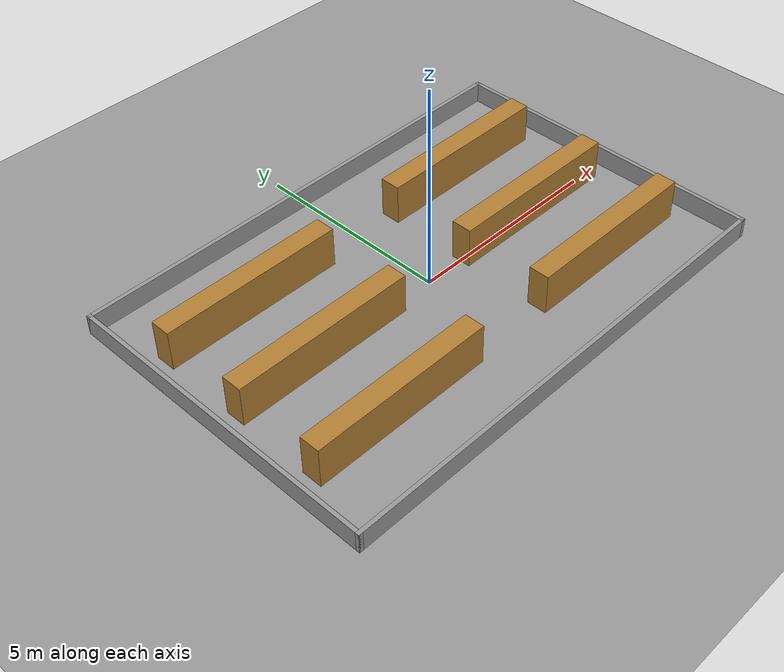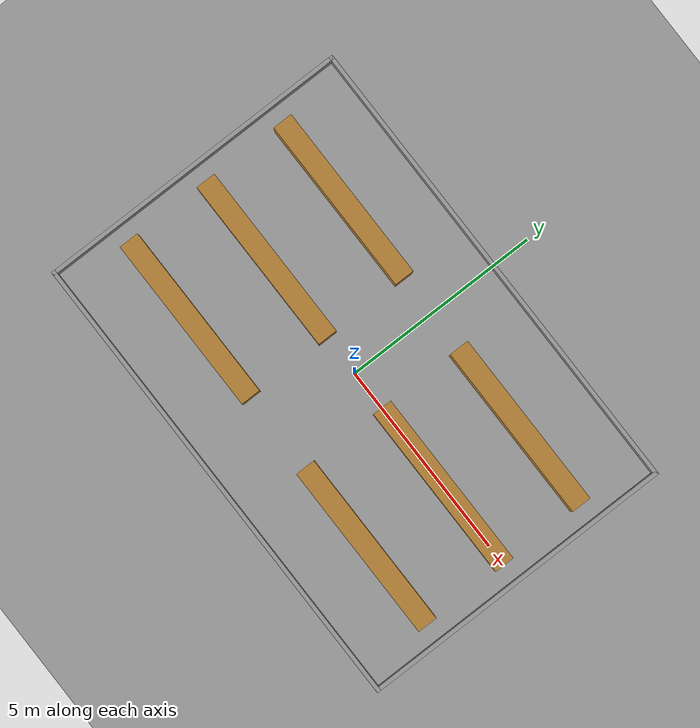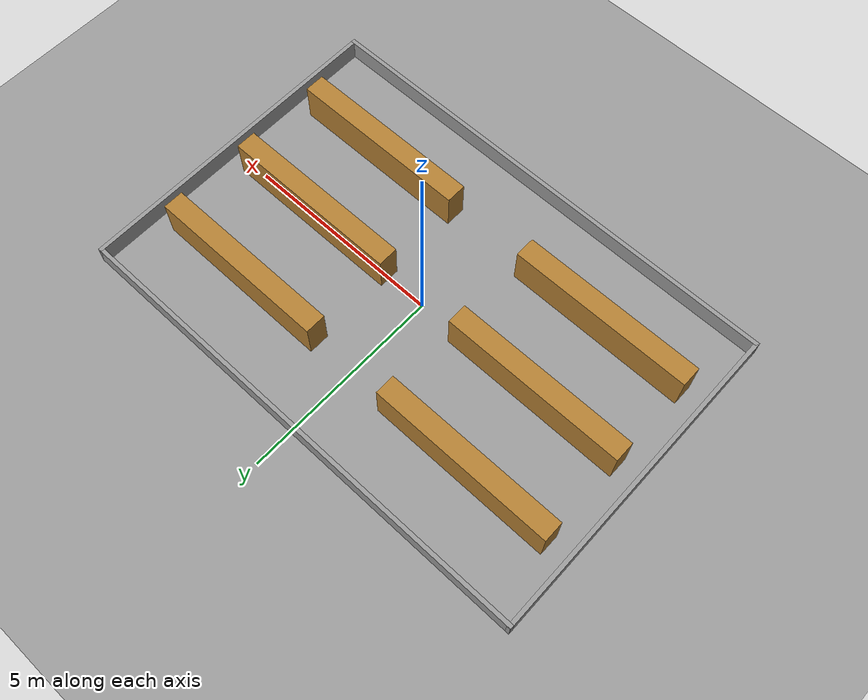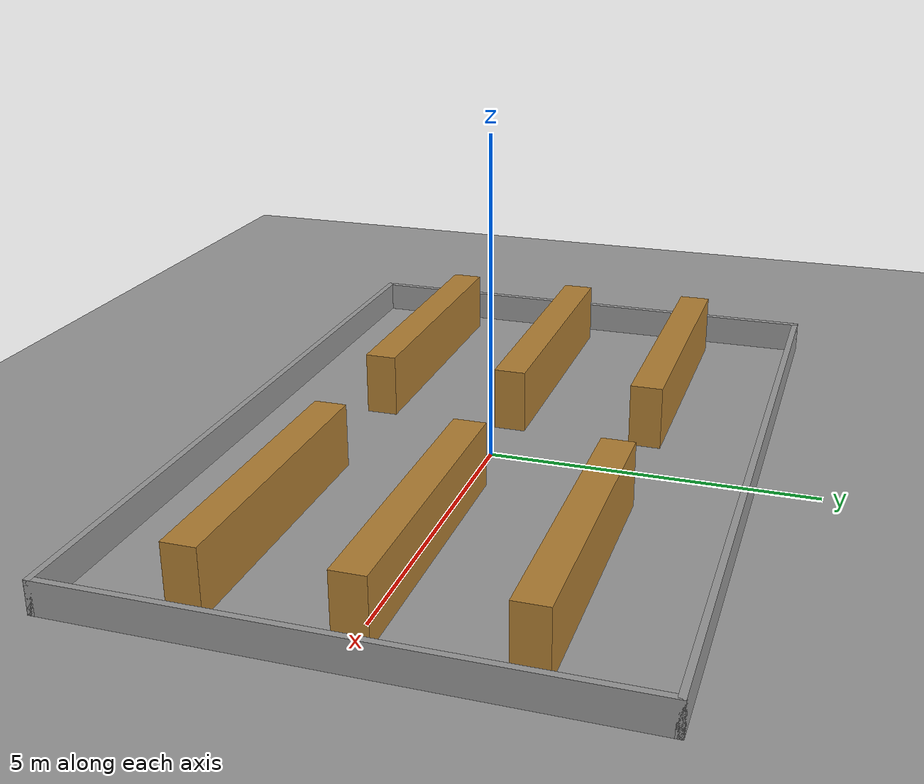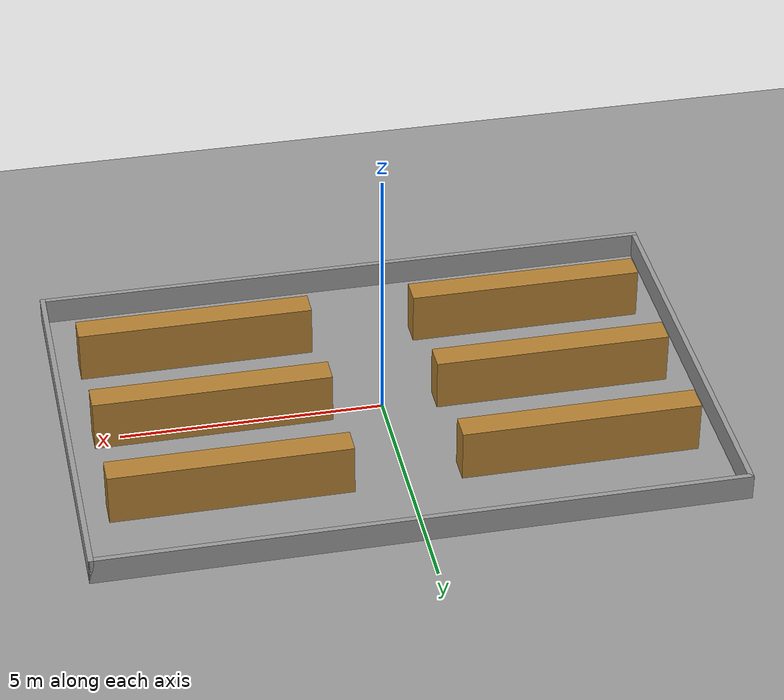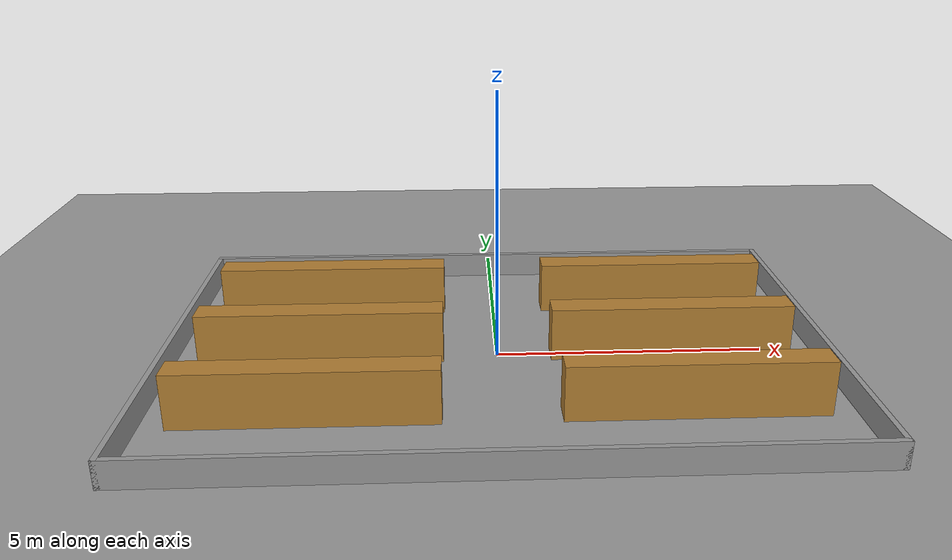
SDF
<?xml version="1.0" ?>
<sdf version="1.9">
  <world name="atlas_warehouse">

    <!-- Xem giải thích panel GUI này (Visualize Lidar, v.v.) trong maze.sdf -- copy nguyên
         khối GUI/plugin từ đó để world nào cũng có trải nghiệm giống nhau. -->
    <gui fullscreen="0">
      <plugin filename="MinimalScene" name="3D View">
        <gz-gui>
          <title>3D View</title>
          <property type="bool" key="showTitleBar">false</property>
          <property type="string" key="state">docked</property>
        </gz-gui>
        <engine>ogre2</engine>
        <scene>scene</scene>
        <ambient_light>0.4 0.4 0.4</ambient_light>
        <background_color>0.8 0.8 0.8</background_color>
        <camera_pose>-10 -8 10 0 0.6 0.7</camera_pose>
      </plugin>
      <plugin filename="EntityContextMenuPlugin" name="Entity context menu">
        <gz-gui>
          <property key="state" type="string">floating</property>
          <property key="width" type="double">5</property>
          <property key="height" type="double">5</property>
          <property key="showTitleBar" type="bool">false</property>
        </gz-gui>
      </plugin>
      <plugin filename="GzSceneManager" name="Scene Manager">
        <gz-gui>
          <property key="resizable" type="bool">false</property>
          <property key="width" type="double">5</property>
          <property key="height" type="double">5</property>
          <property key="state" type="string">floating</property>
          <property key="showTitleBar" type="bool">false</property>
        </gz-gui>
      </plugin>
      <plugin filename="InteractiveViewControl" name="Interactive view control">
        <gz-gui>
          <property key="resizable" type="bool">false</property>
          <property key="width" type="double">5</property>
          <property key="height" type="double">5</property>
          <property key="state" type="string">floating</property>
          <property key="showTitleBar" type="bool">false</property>
        </gz-gui>
      </plugin>
      <plugin filename="CameraTracking" name="Camera Tracking">
        <gz-gui>
          <property key="resizable" type="bool">false</property>
          <property key="width" type="double">5</property>
          <property key="height" type="double">5</property>
          <property key="state" type="string">floating</property>
          <property key="showTitleBar" type="bool">false</property>
        </gz-gui>
      </plugin>
      <plugin filename="WorldControl" name="World control">
        <gz-gui>
          <title>World control</title>
          <property type="bool" key="showTitleBar">false</property>
          <property type="bool" key="resizable">false</property>
          <property type="double" key="height">72</property>
          <property type="double" key="width">121</property>
          <property type="double" key="z">1</property>
          <property type="string" key="state">floating</property>
          <anchors target="3D View">
            <line own="left" target="left"/>
            <line own="bottom" target="bottom"/>
          </anchors>
        </gz-gui>
        <play_pause>true</play_pause>
        <step>true</step>
        <use_event>true</use_event>
      </plugin>
      <plugin filename="WorldStats" name="World stats">
        <gz-gui>
          <title>World stats</title>
          <property type="bool" key="showTitleBar">false</property>
          <property type="bool" key="resizable">false</property>
          <property type="double" key="height">110</property>
          <property type="double" key="width">290</property>
          <property type="double" key="z">1</property>
          <property type="string" key="state">floating</property>
          <anchors target="3D View">
            <line own="right" target="right"/>
            <line own="bottom" target="bottom"/>
          </anchors>
        </gz-gui>
        <sim_time>true</sim_time>
        <real_time>true</real_time>
        <real_time_factor>true</real_time_factor>
        <iterations>true</iterations>
      </plugin>
      <plugin filename="EntityTree" name="Entity tree">
        <gz-gui>
          <property type="string" key="state">docked</property>
        </gz-gui>
      </plugin>
      <plugin filename="VisualizeLidar" name="Visualize Lidar"/>
    </gui>

    <plugin filename="gz-sim-physics-system" name="gz::sim::systems::Physics"/>
    <plugin filename="gz-sim-user-commands-system" name="gz::sim::systems::UserCommands"/>
    <plugin filename="gz-sim-scene-broadcaster-system" name="gz::sim::systems::SceneBroadcaster"/>
    <plugin filename="gz-sim-contact-system" name="gz::sim::systems::Contact"/>
    <plugin filename="gz-sim-imu-system" name="gz::sim::systems::Imu"/>
    <plugin filename="gz-sim-sensors-system" name="gz::sim::systems::Sensors">
      <render_engine>ogre2</render_engine>
    </plugin>

    <!-- Giữ nguyên physics đã xác nhận fix bug "xuyên tường" ở maze.sdf: dartsim +
         collision_detector bullet (ODE không có plugin cài sẵn trên máy này). -->
    <physics name="1ms" type="dartsim">
      <max_step_size>0.001</max_step_size>
      <real_time_factor>1.0</real_time_factor>
      <dart>
        <collision_detector>bullet</collision_detector>
      </dart>
    </physics>

    <light type="directional" name="sun">
      <cast_shadows>true</cast_shadows>
      <pose>0 0 10 0 0 0</pose>
      <diffuse>0.8 0.8 0.8 1</diffuse>
      <specular>0.2 0.2 0.2 1</specular>
      <attenuation>
        <range>1000</range>
        <constant>0.9</constant>
        <linear>0.01</linear>
        <quadratic>0.001</quadratic>
      </attenuation>
      <direction>-0.5 0.1 -0.9</direction>
    </light>

    <model name="ground_plane">
      <static>true</static>
      <link name="link">
        <collision name="collision">
          <geometry>
            <plane>
              <normal>0 0 1</normal>
              <size>100 100</size>
            </plane>
          </geometry>
          <surface>
            <friction>
              <ode>
                <mu>1.0</mu>
                <mu2>1.0</mu2>
              </ode>
            </friction>
          </surface>
        </collision>
        <visual name="visual">
          <geometry>
            <plane>
              <normal>0 0 1</normal>
              <size>100 100</size>
            </plane>
          </geometry>
          <material>
            <ambient>0.6 0.6 0.6 1</ambient>
            <diffuse>0.6 0.6 0.6 1</diffuse>
            <specular>0.2 0.2 0.2 1</specular>
          </material>
        </visual>
      </link>
    </model>

    <model name="warehouse_wall_north">
      <static>true</static>
      <pose>0 4.0 0.25 0 0 0</pose>
      <link name="link">
        <collision name="collision">
          <geometry><box><size>12.1 0.1 0.5</size></box></geometry>
          <surface>
            <friction><ode><mu>1.0</mu><mu2>1.0</mu2></ode></friction>
            <contact><ode><min_depth>0.001</min_depth><max_vel>2.0</max_vel></ode></contact>
          </surface>
        </collision>
        <visual name="visual">
          <geometry><box><size>12.1 0.1 0.5</size></box></geometry>
          <material><ambient>0.6 0.6 0.6 1</ambient><diffuse>0.6 0.6 0.6 1</diffuse></material>
        </visual>
      </link>
    </model>

    <model name="warehouse_wall_south">
      <static>true</static>
      <pose>0 -4.0 0.25 0 0 0</pose>
      <link name="link">
        <collision name="collision">
          <geometry><box><size>12.1 0.1 0.5</size></box></geometry>
          <surface>
            <friction><ode><mu>1.0</mu><mu2>1.0</mu2></ode></friction>
            <contact><ode><min_depth>0.001</min_depth><max_vel>2.0</max_vel></ode></contact>
          </surface>
        </collision>
        <visual name="visual">
          <geometry><box><size>12.1 0.1 0.5</size></box></geometry>
          <material><ambient>0.6 0.6 0.6 1</ambient><diffuse>0.6 0.6 0.6 1</diffuse></material>
        </visual>
      </link>
    </model>

    <model name="warehouse_wall_east">
      <static>true</static>
      <pose>6.0 0 0.25 0 0 0</pose>
      <link name="link">
        <collision name="collision">
          <geometry><box><size>0.1 8.1 0.5</size></box></geometry>
          <surface>
            <friction><ode><mu>1.0</mu><mu2>1.0</mu2></ode></friction>
            <contact><ode><min_depth>0.001</min_depth><max_vel>2.0</max_vel></ode></contact>
          </surface>
        </collision>
        <visual name="visual">
          <geometry><box><size>0.1 8.1 0.5</size></box></geometry>
          <material><ambient>0.6 0.6 0.6 1</ambient><diffuse>0.6 0.6 0.6 1</diffuse></material>
        </visual>
      </link>
    </model>

    <model name="warehouse_wall_west">
      <static>true</static>
      <pose>-6.0 0 0.25 0 0 0</pose>
      <link name="link">
        <collision name="collision">
          <geometry><box><size>0.1 8.1 0.5</size></box></geometry>
          <surface>
            <friction><ode><mu>1.0</mu><mu2>1.0</mu2></ode></friction>
            <contact><ode><min_depth>0.001</min_depth><max_vel>2.0</max_vel></ode></contact>
          </surface>
        </collision>
        <visual name="visual">
          <geometry><box><size>0.1 8.1 0.5</size></box></geometry>
          <material><ambient>0.6 0.6 0.6 1</ambient><diffuse>0.6 0.6 0.6 1</diffuse></material>
        </visual>
      </link>
    </model>

    <!-- Dãy kệ 1 (y=2.2), 2 đoạn trái/phải, chừa lối dọc giữa x: -1..1 -->
    <model name="shelf_row1_left">
      <static>true</static>
      <pose>-3.25 2.2 0.5 0 0 0</pose>
      <link name="link">
        <collision name="collision">
          <geometry><box><size>4.5 0.5 1.0</size></box></geometry>
          <surface>
            <friction><ode><mu>1.0</mu><mu2>1.0</mu2></ode></friction>
            <contact><ode><min_depth>0.001</min_depth><max_vel>2.0</max_vel></ode></contact>
          </surface>
        </collision>
        <visual name="visual">
          <geometry><box><size>4.5 0.5 1.0</size></box></geometry>
          <material><ambient>0.7 0.5 0.2 1</ambient><diffuse>0.7 0.5 0.2 1</diffuse></material>
        </visual>
      </link>
    </model>

    <model name="shelf_row1_right">
      <static>true</static>
      <pose>3.25 2.2 0.5 0 0 0</pose>
      <link name="link">
        <collision name="collision">
          <geometry><box><size>4.5 0.5 1.0</size></box></geometry>
          <surface>
            <friction><ode><mu>1.0</mu><mu2>1.0</mu2></ode></friction>
            <contact><ode><min_depth>0.001</min_depth><max_vel>2.0</max_vel></ode></contact>
          </surface>
        </collision>
        <visual name="visual">
          <geometry><box><size>4.5 0.5 1.0</size></box></geometry>
          <material><ambient>0.7 0.5 0.2 1</ambient><diffuse>0.7 0.5 0.2 1</diffuse></material>
        </visual>
      </link>
    </model>

    <!-- Dãy kệ 2 (y=0), 2 đoạn trái/phải -->
    <model name="shelf_row2_left">
      <static>true</static>
      <pose>-3.25 0 0.5 0 0 0</pose>
      <link name="link">
        <collision name="collision">
          <geometry><box><size>4.5 0.5 1.0</size></box></geometry>
          <surface>
            <friction><ode><mu>1.0</mu><mu2>1.0</mu2></ode></friction>
            <contact><ode><min_depth>0.001</min_depth><max_vel>2.0</max_vel></ode></contact>
          </surface>
        </collision>
        <visual name="visual">
          <geometry><box><size>4.5 0.5 1.0</size></box></geometry>
          <material><ambient>0.7 0.5 0.2 1</ambient><diffuse>0.7 0.5 0.2 1</diffuse></material>
        </visual>
      </link>
    </model>

    <model name="shelf_row2_right">
      <static>true</static>
      <pose>3.25 0 0.5 0 0 0</pose>
      <link name="link">
        <collision name="collision">
          <geometry><box><size>4.5 0.5 1.0</size></box></geometry>
          <surface>
            <friction><ode><mu>1.0</mu><mu2>1.0</mu2></ode></friction>
            <contact><ode><min_depth>0.001</min_depth><max_vel>2.0</max_vel></ode></contact>
          </surface>
        </collision>
        <visual name="visual">
          <geometry><box><size>4.5 0.5 1.0</size></box></geometry>
          <material><ambient>0.7 0.5 0.2 1</ambient><diffuse>0.7 0.5 0.2 1</diffuse></material>
        </visual>
      </link>
    </model>

    <!-- Dãy kệ 3 (y=-2.2), 2 đoạn trái/phải -->
    <model name="shelf_row3_left">
      <static>true</static>
      <pose>-3.25 -2.2 0.5 0 0 0</pose>
      <link name="link">
        <collision name="collision">
          <geometry><box><size>4.5 0.5 1.0</size></box></geometry>
          <surface>
            <friction><ode><mu>1.0</mu><mu2>1.0</mu2></ode></friction>
            <contact><ode><min_depth>0.001</min_depth><max_vel>2.0</max_vel></ode></contact>
          </surface>
        </collision>
        <visual name="visual">
          <geometry><box><size>4.5 0.5 1.0</size></box></geometry>
          <material><ambient>0.7 0.5 0.2 1</ambient><diffuse>0.7 0.5 0.2 1</diffuse></material>
        </visual>
      </link>
    </model>

    <model name="shelf_row3_right">
      <static>true</static>
      <pose>3.25 -2.2 0.5 0 0 0</pose>
      <link name="link">
        <collision name="collision">
          <geometry><box><size>4.5 0.5 1.0</size></box></geometry>
          <surface>
            <friction><ode><mu>1.0</mu><mu2>1.0</mu2></ode></friction>
            <contact><ode><min_depth>0.001</min_depth><max_vel>2.0</max_vel></ode></contact>
          </surface>
        </collision>
        <visual name="visual">
          <geometry><box><size>4.5 0.5 1.0</size></box></geometry>
          <material><ambient>0.7 0.5 0.2 1</ambient><diffuse>0.7 0.5 0.2 1</diffuse></material>
        </visual>
      </link>
    </model>

  </world>
</sdf>
